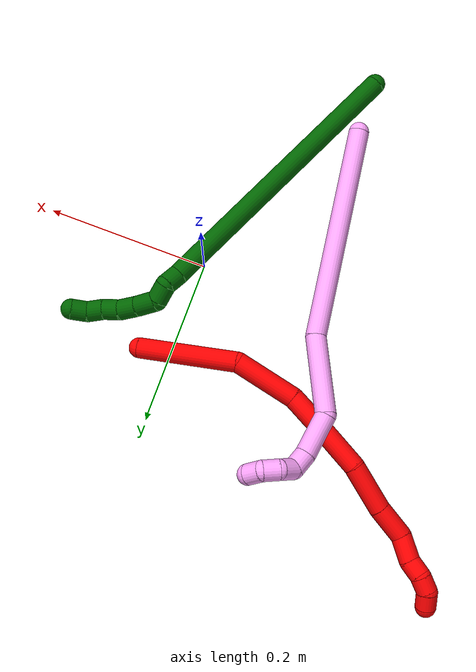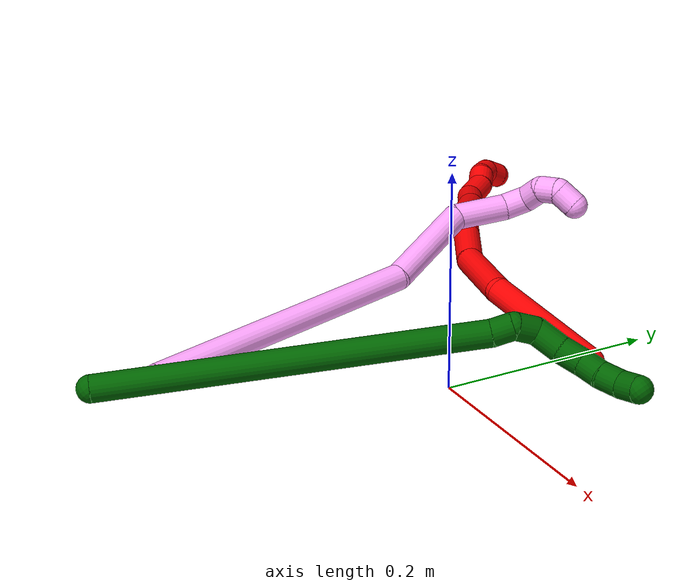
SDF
<sdf version="1.7">
 <world name="default">
  <model name="photoneo_s_sensor">
   <static>1</static>
   <pose>0 0 2 1.57079 1.57079 3.14159</pose>
   <link name="link">
    <inertial><mass>0.1</mass></inertial>
    <sensor name="sensor" type="depth">
     <update_rate>30</update_rate>
     <camera>
      <horizontal_fov>1.22</horizontal_fov>
      <image><width>1920</width><height>1200</height><format>B8G8R8</format></image>
      <clip><near>0.1</near><far>4</far></clip>
      <depth_camera><output>points</output></depth_camera>
     </camera>
     <plugin name="camera_plugin" filename="libgazebo_ros_depth_camera.so">
      <baseline>0.2</baseline>
      <alwaysOn>1</alwaysOn>
      <updateRate>0.0</updateRate>
      <cameraName>camera_ir</cameraName>
      <imageTopicName>/camera/color/image_raw</imageTopicName>
      <cameraInfoTopicName>/camera/color/camera_info</cameraInfoTopicName>
      <depthImageTopicName>/camera/depth/image_raw</depthImageTopicName>
      <depthImageCameraInfoTopicName>/camera/depth/camera_info</depthImageCameraInfoTopicName>
      <pointCloudTopicName>/camera/depth/points</pointCloudTopicName>
      <frameName>fr_optical</frameName>
      <pointCloudCutoff>0.1</pointCloudCutoff>
      <pointCloudCutoffMax>2.0</pointCloudCutoffMax>
      <distortionK1>0</distortionK1>
      <distortionK2>0</distortionK2>
      <distortionK3>0</distortionK3>
      <distortionT1>0</distortionT1>
      <distortionT2>0</distortionT2>
      <CxPrime>0</CxPrime>
      <Cx>0</Cx>
      <Cy>0</Cy>
      <focalLength>0</focalLength>
      <hackBaseline>0</hackBaseline>
     </plugin>
    </sensor>
   </link>
  </model>
  <model name="bin">
   <static>1</static>
   <link name="bottom">
    <collision name="collision-bottom">
     <pose>0 0 -0.01 0 -0 0</pose>
     <geometry><box><size>0.8 0.6 0.02</size></box></geometry>
     <surface>
      <friction><ode><mu>100</mu><mu2>100</mu2></ode></friction>
      <contact><collide_bitmask>65535</collide_bitmask></contact>
     </surface>
    </collision>
   </link>
   <link name="west_wall">
    <collision name="collision-west_wall">
     <pose>-0.41 0 0.1 0 -0 0</pose>
     <geometry><box><size>0.02 0.6 0.2</size></box></geometry>
     <surface>
      <friction><ode><mu>100</mu><mu2>100</mu2></ode></friction>
      <contact><collide_bitmask>65535</collide_bitmask></contact>
     </surface>
    </collision>
   </link>
   <link name="east_wall">
    <collision name="collision-east_wall">
     <pose>0.41 0 0.1 0 -0 0</pose>
     <geometry><box><size>0.02 0.6 0.2</size></box></geometry>
     <surface>
      <friction><ode><mu>100</mu><mu2>100</mu2></ode></friction>
      <contact><collide_bitmask>65535</collide_bitmask></contact>
     </surface>
    </collision>
   </link>
   <link name="south_wall">
    <collision name="collision-south_wall">
     <pose>0 -0.31 0.1 0 -0 0</pose>
     <geometry><box><size>0.8 0.02 0.2</size></box></geometry>
     <surface>
      <friction><ode><mu>100</mu><mu2>100</mu2></ode></friction>
      <contact><collide_bitmask>65535</collide_bitmask></contact>
     </surface>
    </collision>
   </link>
   <link name="north_wall">
    <collision name="collision-north_wall">
     <pose>0 0.31 0.1 0 -0 0</pose>
     <geometry><box><size>0.8 0.02 0.2</size></box></geometry>
     <surface>
      <friction><ode><mu>100</mu><mu2>100</mu2></ode></friction>
      <contact><collide_bitmask>65535</collide_bitmask></contact>
     </surface>
    </collision>
   </link>
  </model>
  <model name="2">
   <static>0</static>
   <link name="2">
    <collision name="collision-cylinder-e_1_1_4">
     <pose>-0.004161 -0.006115 0.061323 0.099397 -0.067417 -0.003355</pose>
     <geometry><cylinder><radius>0.0125</radius><length>0.123535</length></cylinder></geometry>
     <surface>
      <friction><ode><mu>1.16</mu><mu2>1.16</mu2><slip1>0</slip1><slip2>0</slip2></ode></friction>
      <contact><ode><kp>1e+06</kp><kd>1</kd><max_vel>0</max_vel><min_depth>0.001</min_depth></ode></contact>
     </surface>
    </collision>
    <visual name="visual-cylinder-e_1_1_4">
     <pose>-0.004161 -0.006115 0.061323 0.099397 -0.067417 -0.003355</pose>
     <geometry><cylinder><radius>0.0125</radius><length>0.123535</length></cylinder></geometry>
     <material><ambient>1 0 0 1</ambient></material>
    </visual>
    <collision name="collision-cylinder-e_2_4_5">
     <pose>-0.01463 0.001521 0.158613 -0.365203 -0.16237 0.030047</pose>
     <geometry><cylinder><radius>0.0125</radius><length>0.078039</length></cylinder></geometry>
     <surface>
      <friction><ode><mu>1.16</mu><mu2>1.16</mu2><slip1>0</slip1><slip2>0</slip2></ode></friction>
      <contact><ode><kp>1e+06</kp><kd>1</kd><max_vel>0</max_vel><min_depth>0.001</min_depth></ode></contact>
     </surface>
    </collision>
    <visual name="visual-cylinder-e_2_4_5">
     <pose>-0.01463 0.001521 0.158613 -0.365203 -0.16237 0.030047</pose>
     <geometry><cylinder><radius>0.0125</radius><length>0.078039</length></cylinder></geometry>
     <material><ambient>1 0 0 1</ambient></material>
    </visual>
    <collision name="collision-cylinder-e_3_5_6">
     <pose>-0.019731 0.029073 0.215886 -0.574736 0.047482 -0.014036</pose>
     <geometry><cylinder><radius>0.0125</radius><length>0.050827</length></cylinder></geometry>
     <surface>
      <friction><ode><mu>1.16</mu><mu2>1.16</mu2><slip1>0</slip1><slip2>0</slip2></ode></friction>
      <contact><ode><kp>1e+06</kp><kd>1</kd><max_vel>0</max_vel><min_depth>0.001</min_depth></ode></contact>
     </surface>
    </collision>
    <visual name="visual-cylinder-e_3_5_6">
     <pose>-0.019731 0.029073 0.215886 -0.574736 0.047482 -0.014036</pose>
     <geometry><cylinder><radius>0.0125</radius><length>0.050827</length></cylinder></geometry>
     <material><ambient>1 0 0 1</ambient></material>
    </visual>
    <collision name="collision-cylinder-e_4_6_7">
     <pose>-0.019772 0.059257 0.259628 -0.63079 -0.044858 0.014639</pose>
     <geometry><cylinder><radius>0.0125</radius><length>0.055618</length></cylinder></geometry>
     <surface>
      <friction><ode><mu>1.16</mu><mu2>1.16</mu2><slip1>0</slip1><slip2>0</slip2></ode></friction>
      <contact><ode><kp>1e+06</kp><kd>1</kd><max_vel>0</max_vel><min_depth>0.001</min_depth></ode></contact>
     </surface>
    </collision>
    <visual name="visual-cylinder-e_4_6_7">
     <pose>-0.019772 0.059257 0.259628 -0.63079 -0.044858 0.014639</pose>
     <geometry><cylinder><radius>0.0125</radius><length>0.055618</length></cylinder></geometry>
     <material><ambient>1 0 0 1</ambient></material>
    </visual>
    <collision name="collision-cylinder-e_5_7_8">
     <pose>-0.025123 0.097487 0.301257 -0.849891 -0.14019 0.063521</pose>
     <geometry><cylinder><radius>0.0125</radius><length>0.058735</length></cylinder></geometry>
     <surface>
      <friction><ode><mu>1.16</mu><mu2>1.16</mu2><slip1>0</slip1><slip2>0</slip2></ode></friction>
      <contact><ode><kp>1e+06</kp><kd>1</kd><max_vel>0</max_vel><min_depth>0.001</min_depth></ode></contact>
     </surface>
    </collision>
    <visual name="visual-cylinder-e_5_7_8">
     <pose>-0.025123 0.097487 0.301257 -0.849891 -0.14019 0.063521</pose>
     <geometry><cylinder><radius>0.0125</radius><length>0.058735</length></cylinder></geometry>
     <material><ambient>1 0 0 1</ambient></material>
    </visual>
    <collision name="collision-cylinder-e_6_8_9">
     <pose>-0.032716 0.132699 0.335809 -0.71623 -0.16976 0.063665</pose>
     <geometry><cylinder><radius>0.0125</radius><length>0.041316</length></cylinder></geometry>
     <surface>
      <friction><ode><mu>1.16</mu><mu2>1.16</mu2><slip1>0</slip1><slip2>0</slip2></ode></friction>
      <contact><ode><kp>1e+06</kp><kd>1</kd><max_vel>0</max_vel><min_depth>0.001</min_depth></ode></contact>
     </surface>
    </collision>
    <visual name="visual-cylinder-e_6_8_9">
     <pose>-0.032716 0.132699 0.335809 -0.71623 -0.16976 0.063665</pose>
     <geometry><cylinder><radius>0.0125</radius><length>0.041316</length></cylinder></geometry>
     <material><ambient>1 0 0 1</ambient></material>
    </visual>
    <collision name="collision-cylinder-e_7_9_10">
     <pose>-0.033309 0.158698 0.359778 -0.972424 0.187315 -0.099211</pose>
     <geometry><cylinder><radius>0.0125</radius><length>0.031117</length></cylinder></geometry>
     <surface>
      <friction><ode><mu>1.16</mu><mu2>1.16</mu2><slip1>0</slip1><slip2>0</slip2></ode></friction>
      <contact><ode><kp>1e+06</kp><kd>1</kd><max_vel>0</max_vel><min_depth>0.001</min_depth></ode></contact>
     </surface>
    </collision>
    <visual name="visual-cylinder-e_7_9_10">
     <pose>-0.033309 0.158698 0.359778 -0.972424 0.187315 -0.099211</pose>
     <geometry><cylinder><radius>0.0125</radius><length>0.031117</length></cylinder></geometry>
     <material><ambient>1 0 0 1</ambient></material>
    </visual>
    <collision name="collision-cylinder-e_8_10_11">
     <pose>-0.02835 0.177334 0.376495 -0.637687 0.201627 -0.06676</pose>
     <geometry><cylinder><radius>0.0125</radius><length>0.020594</length></cylinder></geometry>
     <surface>
      <friction><ode><mu>1.16</mu><mu2>1.16</mu2><slip1>0</slip1><slip2>0</slip2></ode></friction>
      <contact><ode><kp>1e+06</kp><kd>1</kd><max_vel>0</max_vel><min_depth>0.001</min_depth></ode></contact>
     </surface>
    </collision>
    <visual name="visual-cylinder-e_8_10_11">
     <pose>-0.02835 0.177334 0.376495 -0.637687 0.201627 -0.06676</pose>
     <geometry><cylinder><radius>0.0125</radius><length>0.020594</length></cylinder></geometry>
     <material><ambient>1 0 0 1</ambient></material>
    </visual>
    <collision name="collision-cylinder-e_9_11_12">
     <pose>-0.026741 0.191597 0.390392 -0.959165 -0.044941 0.023376</pose>
     <geometry><cylinder><radius>0.0125</radius><length>0.020191</length></cylinder></geometry>
     <surface>
      <friction><ode><mu>1.16</mu><mu2>1.16</mu2><slip1>0</slip1><slip2>0</slip2></ode></friction>
      <contact><ode><kp>1e+06</kp><kd>1</kd><max_vel>0</max_vel><min_depth>0.001</min_depth></ode></contact>
     </surface>
    </collision>
    <visual name="visual-cylinder-e_9_11_12">
     <pose>-0.026741 0.191597 0.390392 -0.959165 -0.044941 0.023376</pose>
     <geometry><cylinder><radius>0.0125</radius><length>0.020191</length></cylinder></geometry>
     <material><ambient>1 0 0 1</ambient></material>
    </visual>
    <collision name="collision-cylinder-e_10_12_2">
     <pose>-0.028937 0.209674 0.397081 -1.47961 -0.174923 0.159727</pose>
     <geometry><cylinder><radius>0.0125</radius><length>0.020027</length></cylinder></geometry>
     <surface>
      <friction><ode><mu>1.16</mu><mu2>1.16</mu2><slip1>0</slip1><slip2>0</slip2></ode></friction>
      <contact><ode><kp>1e+06</kp><kd>1</kd><max_vel>0</max_vel><min_depth>0.001</min_depth></ode></contact>
     </surface>
    </collision>
    <visual name="visual-cylinder-e_10_12_2">
     <pose>-0.028937 0.209674 0.397081 -1.47961 -0.174923 0.159727</pose>
     <geometry><cylinder><radius>0.0125</radius><length>0.020027</length></cylinder></geometry>
     <material><ambient>1 0 0 1</ambient></material>
    </visual>
    <collision name="collision-sphere-2">
     <pose>-0.03068 0.219494 0.397979 0 -0 0</pose>
     <geometry><sphere><radius>0.0125</radius></sphere></geometry>
     <surface>
      <friction><ode><mu>1.16</mu><mu2>1.16</mu2><slip1>0</slip1><slip2>0</slip2></ode></friction>
      <contact><ode><kp>1e+06</kp><kd>1</kd><max_vel>0</max_vel><min_depth>0.001</min_depth></ode></contact>
     </surface>
    </collision>
    <visual name="visual-sphere-2">
     <pose>-0.03068 0.219494 0.397979 0 -0 0</pose>
     <geometry><sphere><radius>0.0125</radius></sphere></geometry>
     <material><ambient>1 0 0 1</ambient></material>
    </visual>
    <collision name="collision-sphere-12">
     <pose>-0.027195 0.199854 0.396183 0 -0 0</pose>
     <geometry><sphere><radius>0.0125</radius></sphere></geometry>
     <surface>
      <friction><ode><mu>1.16</mu><mu2>1.16</mu2><slip1>0</slip1><slip2>0</slip2></ode></friction>
      <contact><ode><kp>1e+06</kp><kd>1</kd><max_vel>0</max_vel><min_depth>0.001</min_depth></ode></contact>
     </surface>
    </collision>
    <visual name="visual-sphere-12">
     <pose>-0.027195 0.199854 0.396183 0 -0 0</pose>
     <geometry><sphere><radius>0.0125</radius></sphere></geometry>
     <material><ambient>1 0 0 1</ambient></material>
    </visual>
    <collision name="collision-sphere-11">
     <pose>-0.026288 0.18334 0.384601 0 -0 0</pose>
     <geometry><sphere><radius>0.0125</radius></sphere></geometry>
     <surface>
      <friction><ode><mu>1.16</mu><mu2>1.16</mu2><slip1>0</slip1><slip2>0</slip2></ode></friction>
      <contact><ode><kp>1e+06</kp><kd>1</kd><max_vel>0</max_vel><min_depth>0.001</min_depth></ode></contact>
     </surface>
    </collision>
    <visual name="visual-sphere-11">
     <pose>-0.026288 0.18334 0.384601 0 -0 0</pose>
     <geometry><sphere><radius>0.0125</radius></sphere></geometry>
     <material><ambient>1 0 0 1</ambient></material>
    </visual>
    <collision name="collision-sphere-10">
     <pose>-0.030412 0.171328 0.368389 0 -0 0</pose>
     <geometry><sphere><radius>0.0125</radius></sphere></geometry>
     <surface>
      <friction><ode><mu>1.16</mu><mu2>1.16</mu2><slip1>0</slip1><slip2>0</slip2></ode></friction>
      <contact><ode><kp>1e+06</kp><kd>1</kd><max_vel>0</max_vel><min_depth>0.001</min_depth></ode></contact>
     </surface>
    </collision>
    <visual name="visual-sphere-10">
     <pose>-0.030412 0.171328 0.368389 0 -0 0</pose>
     <geometry><sphere><radius>0.0125</radius></sphere></geometry>
     <material><ambient>1 0 0 1</ambient></material>
    </visual>
    <collision name="collision-sphere-9">
     <pose>-0.036207 0.146067 0.351167 0 -0 0</pose>
     <geometry><sphere><radius>0.0125</radius></sphere></geometry>
     <surface>
      <friction><ode><mu>1.16</mu><mu2>1.16</mu2><slip1>0</slip1><slip2>0</slip2></ode></friction>
      <contact><ode><kp>1e+06</kp><kd>1</kd><max_vel>0</max_vel><min_depth>0.001</min_depth></ode></contact>
     </surface>
    </collision>
    <visual name="visual-sphere-9">
     <pose>-0.036207 0.146067 0.351167 0 -0 0</pose>
     <geometry><sphere><radius>0.0125</radius></sphere></geometry>
     <material><ambient>1 0 0 1</ambient></material>
    </visual>
    <collision name="collision-sphere-4">
     <pose>-0.008322 -0.012231 0.122646 0 -0 0</pose>
     <geometry><sphere><radius>0.0125</radius></sphere></geometry>
     <surface>
      <friction><ode><mu>1.16</mu><mu2>1.16</mu2><slip1>0</slip1><slip2>0</slip2></ode></friction>
      <contact><ode><kp>1e+06</kp><kd>1</kd><max_vel>0</max_vel><min_depth>0.001</min_depth></ode></contact>
     </surface>
    </collision>
    <visual name="visual-sphere-4">
     <pose>-0.008322 -0.012231 0.122646 0 -0 0</pose>
     <geometry><sphere><radius>0.0125</radius></sphere></geometry>
     <material><ambient>1 0 0 1</ambient></material>
    </visual>
    <collision name="collision-sphere-1">
     <geometry><sphere><radius>0.0125</radius></sphere></geometry>
     <surface>
      <friction><ode><mu>1.16</mu><mu2>1.16</mu2><slip1>0</slip1><slip2>0</slip2></ode></friction>
      <contact><ode><kp>1e+06</kp><kd>1</kd><max_vel>0</max_vel><min_depth>0.001</min_depth></ode></contact>
     </surface>
    </collision>
    <visual name="visual-sphere-1">
     <geometry><sphere><radius>0.0125</radius></sphere></geometry>
     <material><ambient>1 0 0 1</ambient></material>
    </visual>
    <collision name="collision-sphere-8">
     <pose>-0.029226 0.119331 0.320451 0 -0 0</pose>
     <geometry><sphere><radius>0.0125</radius></sphere></geometry>
     <surface>
      <friction><ode><mu>1.16</mu><mu2>1.16</mu2><slip1>0</slip1><slip2>0</slip2></ode></friction>
      <contact><ode><kp>1e+06</kp><kd>1</kd><max_vel>0</max_vel><min_depth>0.001</min_depth></ode></contact>
     </surface>
    </collision>
    <visual name="visual-sphere-8">
     <pose>-0.029226 0.119331 0.320451 0 -0 0</pose>
     <geometry><sphere><radius>0.0125</radius></sphere></geometry>
     <material><ambient>1 0 0 1</ambient></material>
    </visual>
    <collision name="collision-sphere-5">
     <pose>-0.020938 0.015273 0.19458 0 -0 0</pose>
     <geometry><sphere><radius>0.0125</radius></sphere></geometry>
     <surface>
      <friction><ode><mu>1.16</mu><mu2>1.16</mu2><slip1>0</slip1><slip2>0</slip2></ode></friction>
      <contact><ode><kp>1e+06</kp><kd>1</kd><max_vel>0</max_vel><min_depth>0.001</min_depth></ode></contact>
     </surface>
    </collision>
    <visual name="visual-sphere-5">
     <pose>-0.020938 0.015273 0.19458 0 -0 0</pose>
     <geometry><sphere><radius>0.0125</radius></sphere></geometry>
     <material><ambient>1 0 0 1</ambient></material>
    </visual>
    <collision name="collision-sphere-6">
     <pose>-0.018525 0.042872 0.237193 0 -0 0</pose>
     <geometry><sphere><radius>0.0125</radius></sphere></geometry>
     <surface>
      <friction><ode><mu>1.16</mu><mu2>1.16</mu2><slip1>0</slip1><slip2>0</slip2></ode></friction>
      <contact><ode><kp>1e+06</kp><kd>1</kd><max_vel>0</max_vel><min_depth>0.001</min_depth></ode></contact>
     </surface>
    </collision>
    <visual name="visual-sphere-6">
     <pose>-0.018525 0.042872 0.237193 0 -0 0</pose>
     <geometry><sphere><radius>0.0125</radius></sphere></geometry>
     <material><ambient>1 0 0 1</ambient></material>
    </visual>
    <collision name="collision-sphere-7">
     <pose>-0.021019 0.075642 0.282063 0 -0 0</pose>
     <geometry><sphere><radius>0.0125</radius></sphere></geometry>
     <surface>
      <friction><ode><mu>1.16</mu><mu2>1.16</mu2><slip1>0</slip1><slip2>0</slip2></ode></friction>
      <contact><ode><kp>1e+06</kp><kd>1</kd><max_vel>0</max_vel><min_depth>0.001</min_depth></ode></contact>
     </surface>
    </collision>
    <visual name="visual-sphere-7">
     <pose>-0.021019 0.075642 0.282063 0 -0 0</pose>
     <geometry><sphere><radius>0.0125</radius></sphere></geometry>
     <material><ambient>1 0 0 1</ambient></material>
    </visual>
    <inertial>
     <pose>-0.018651 0.064006 0.223438 0 -0 0</pose>
     <mass>0.5</mass>
     <inertia>
      <ixx>0.000267</ixx>
      <ixy>0</ixy>
      <ixz>0</ixz>
      <iyy>0.000267</iyy>
      <iyz>0</iyz>
      <izz>1.1e-05</izz>
     </inertia>
    </inertial>
   </link>
   <pose>0.037518 0.122286 0.012545 -0.918209 -1.1459 1.03404</pose>
  </model>
  <model name="4">
   <static>0</static>
   <link name="4">
    <collision name="collision-cylinder-e_1_1_4">
     <pose>-0.008999 0.031477 0.128534 -0.240164 -0.067899 0.008196</pose>
     <geometry><cylinder><radius>0.0125</radius><length>0.265275</length></cylinder></geometry>
     <surface>
      <friction><ode><mu>1.16</mu><mu2>1.16</mu2><slip1>0</slip1><slip2>0</slip2></ode></friction>
      <contact><ode><kp>1e+06</kp><kd>1</kd><max_vel>0</max_vel><min_depth>0.001</min_depth></ode></contact>
     </surface>
    </collision>
    <visual name="visual-cylinder-e_1_1_4">
     <pose>-0.008999 0.031477 0.128534 -0.240164 -0.067899 0.008196</pose>
     <geometry><cylinder><radius>0.0125</radius><length>0.265275</length></cylinder></geometry>
     <material><ambient>1 0.65098 0.996078 1</ambient></material>
    </visual>
    <collision name="collision-cylinder-e_2_4_5">
     <pose>-0.017752 0.05748 0.306285 0.110766 0.004973 0.000276</pose>
     <geometry><cylinder><radius>0.0125</radius><length>0.099043</length></cylinder></geometry>
     <surface>
      <friction><ode><mu>1.16</mu><mu2>1.16</mu2><slip1>0</slip1><slip2>0</slip2></ode></friction>
      <contact><ode><kp>1e+06</kp><kd>1</kd><max_vel>0</max_vel><min_depth>0.001</min_depth></ode></contact>
     </surface>
    </collision>
    <visual name="visual-cylinder-e_2_4_5">
     <pose>-0.017752 0.05748 0.306285 0.110766 0.004973 0.000276</pose>
     <geometry><cylinder><radius>0.0125</radius><length>0.099043</length></cylinder></geometry>
     <material><ambient>1 0.65098 0.996078 1</ambient></material>
    </visual>
    <collision name="collision-cylinder-e_3_5_6">
     <pose>-0.017406 0.064275 0.377862 -0.501853 0.003916 -0.001004</pose>
     <geometry><cylinder><radius>0.0125</radius><length>0.05101</length></cylinder></geometry>
     <surface>
      <friction><ode><mu>1.16</mu><mu2>1.16</mu2><slip1>0</slip1><slip2>0</slip2></ode></friction>
      <contact><ode><kp>1e+06</kp><kd>1</kd><max_vel>0</max_vel><min_depth>0.001</min_depth></ode></contact>
     </surface>
    </collision>
    <visual name="visual-cylinder-e_3_5_6">
     <pose>-0.017406 0.064275 0.377862 -0.501853 0.003916 -0.001004</pose>
     <geometry><cylinder><radius>0.0125</radius><length>0.05101</length></cylinder></geometry>
     <material><ambient>1 0.65098 0.996078 1</ambient></material>
    </visual>
    <collision name="collision-cylinder-e_4_6_7">
     <pose>-0.013481 0.082584 0.409267 -0.58882 0.33816 -0.103434</pose>
     <geometry><cylinder><radius>0.0125</radius><length>0.023059</length></cylinder></geometry>
     <surface>
      <friction><ode><mu>1.16</mu><mu2>1.16</mu2><slip1>0</slip1><slip2>0</slip2></ode></friction>
      <contact><ode><kp>1e+06</kp><kd>1</kd><max_vel>0</max_vel><min_depth>0.001</min_depth></ode></contact>
     </surface>
    </collision>
    <visual name="visual-cylinder-e_4_6_7">
     <pose>-0.013481 0.082584 0.409267 -0.58882 0.33816 -0.103434</pose>
     <geometry><cylinder><radius>0.0125</radius><length>0.023059</length></cylinder></geometry>
     <material><ambient>1 0.65098 0.996078 1</ambient></material>
    </visual>
    <collision name="collision-cylinder-e_5_7_8">
     <pose>-0.000662 0.093975 0.420619 -1.16364 0.995977 -0.686903</pose>
     <geometry><cylinder><radius>0.0125</radius><length>0.021432</length></cylinder></geometry>
     <surface>
      <friction><ode><mu>1.16</mu><mu2>1.16</mu2><slip1>0</slip1><slip2>0</slip2></ode></friction>
      <contact><ode><kp>1e+06</kp><kd>1</kd><max_vel>0</max_vel><min_depth>0.001</min_depth></ode></contact>
     </surface>
    </collision>
    <visual name="visual-cylinder-e_5_7_8">
     <pose>-0.000662 0.093975 0.420619 -1.16364 0.995977 -0.686903</pose>
     <geometry><cylinder><radius>0.0125</radius><length>0.021432</length></cylinder></geometry>
     <material><ambient>1 0.65098 0.996078 1</ambient></material>
    </visual>
    <collision name="collision-cylinder-e_6_8_9">
     <pose>0.012633 0.108358 0.424085 -1.44322 0.441201 -0.389638</pose>
     <geometry><cylinder><radius>0.0125</radius><length>0.020144</length></cylinder></geometry>
     <surface>
      <friction><ode><mu>1.16</mu><mu2>1.16</mu2><slip1>0</slip1><slip2>0</slip2></ode></friction>
      <contact><ode><kp>1e+06</kp><kd>1</kd><max_vel>0</max_vel><min_depth>0.001</min_depth></ode></contact>
     </surface>
    </collision>
    <visual name="visual-cylinder-e_6_8_9">
     <pose>0.012633 0.108358 0.424085 -1.44322 0.441201 -0.389638</pose>
     <geometry><cylinder><radius>0.0125</radius><length>0.020144</length></cylinder></geometry>
     <material><ambient>1 0.65098 0.996078 1</ambient></material>
    </visual>
    <collision name="collision-cylinder-e_7_9_2">
     <pose>0.013927 0.126929 0.425849 -1.50743 -0.304865 0.286396</pose>
     <geometry><cylinder><radius>0.0125</radius><length>0.020038</length></cylinder></geometry>
     <surface>
      <friction><ode><mu>1.16</mu><mu2>1.16</mu2><slip1>0</slip1><slip2>0</slip2></ode></friction>
      <contact><ode><kp>1e+06</kp><kd>1</kd><max_vel>0</max_vel><min_depth>0.001</min_depth></ode></contact>
     </surface>
    </collision>
    <visual name="visual-cylinder-e_7_9_2">
     <pose>0.013927 0.126929 0.425849 -1.50743 -0.304865 0.286396</pose>
     <geometry><cylinder><radius>0.0125</radius><length>0.020038</length></cylinder></geometry>
     <material><ambient>1 0.65098 0.996078 1</ambient></material>
    </visual>
    <collision name="collision-sphere-2">
     <pose>0.010919 0.136467 0.426454 0 -0 0</pose>
     <geometry><sphere><radius>0.0125</radius></sphere></geometry>
     <surface>
      <friction><ode><mu>1.16</mu><mu2>1.16</mu2><slip1>0</slip1><slip2>0</slip2></ode></friction>
      <contact><ode><kp>1e+06</kp><kd>1</kd><max_vel>0</max_vel><min_depth>0.001</min_depth></ode></contact>
     </surface>
    </collision>
    <visual name="visual-sphere-2">
     <pose>0.010919 0.136467 0.426454 0 -0 0</pose>
     <geometry><sphere><radius>0.0125</radius></sphere></geometry>
     <material><ambient>1 0.65098 0.996078 1</ambient></material>
    </visual>
    <collision name="collision-sphere-9">
     <pose>0.016934 0.117391 0.425244 0 -0 0</pose>
     <geometry><sphere><radius>0.0125</radius></sphere></geometry>
     <surface>
      <friction><ode><mu>1.16</mu><mu2>1.16</mu2><slip1>0</slip1><slip2>0</slip2></ode></friction>
      <contact><ode><kp>1e+06</kp><kd>1</kd><max_vel>0</max_vel><min_depth>0.001</min_depth></ode></contact>
     </surface>
    </collision>
    <visual name="visual-sphere-9">
     <pose>0.016934 0.117391 0.425244 0 -0 0</pose>
     <geometry><sphere><radius>0.0125</radius></sphere></geometry>
     <material><ambient>1 0.65098 0.996078 1</ambient></material>
    </visual>
    <collision name="collision-sphere-4">
     <pose>-0.017998 0.062954 0.257068 0 -0 0</pose>
     <geometry><sphere><radius>0.0125</radius></sphere></geometry>
     <surface>
      <friction><ode><mu>1.16</mu><mu2>1.16</mu2><slip1>0</slip1><slip2>0</slip2></ode></friction>
      <contact><ode><kp>1e+06</kp><kd>1</kd><max_vel>0</max_vel><min_depth>0.001</min_depth></ode></contact>
     </surface>
    </collision>
    <visual name="visual-sphere-4">
     <pose>-0.017998 0.062954 0.257068 0 -0 0</pose>
     <geometry><sphere><radius>0.0125</radius></sphere></geometry>
     <material><ambient>1 0.65098 0.996078 1</ambient></material>
    </visual>
    <collision name="collision-sphere-1">
     <geometry><sphere><radius>0.0125</radius></sphere></geometry>
     <surface>
      <friction><ode><mu>1.16</mu><mu2>1.16</mu2><slip1>0</slip1><slip2>0</slip2></ode></friction>
      <contact><ode><kp>1e+06</kp><kd>1</kd><max_vel>0</max_vel><min_depth>0.001</min_depth></ode></contact>
     </surface>
    </collision>
    <visual name="visual-sphere-1">
     <geometry><sphere><radius>0.0125</radius></sphere></geometry>
     <material><ambient>1 0.65098 0.996078 1</ambient></material>
    </visual>
    <collision name="collision-sphere-8">
     <pose>0.008332 0.099325 0.422926 0 -0 0</pose>
     <geometry><sphere><radius>0.0125</radius></sphere></geometry>
     <surface>
      <friction><ode><mu>1.16</mu><mu2>1.16</mu2><slip1>0</slip1><slip2>0</slip2></ode></friction>
      <contact><ode><kp>1e+06</kp><kd>1</kd><max_vel>0</max_vel><min_depth>0.001</min_depth></ode></contact>
     </surface>
    </collision>
    <visual name="visual-sphere-8">
     <pose>0.008332 0.099325 0.422926 0 -0 0</pose>
     <geometry><sphere><radius>0.0125</radius></sphere></geometry>
     <material><ambient>1 0.65098 0.996078 1</ambient></material>
    </visual>
    <collision name="collision-sphere-5">
     <pose>-0.017505 0.052006 0.355502 0 -0 0</pose>
     <geometry><sphere><radius>0.0125</radius></sphere></geometry>
     <surface>
      <friction><ode><mu>1.16</mu><mu2>1.16</mu2><slip1>0</slip1><slip2>0</slip2></ode></friction>
      <contact><ode><kp>1e+06</kp><kd>1</kd><max_vel>0</max_vel><min_depth>0.001</min_depth></ode></contact>
     </surface>
    </collision>
    <visual name="visual-sphere-5">
     <pose>-0.017505 0.052006 0.355502 0 -0 0</pose>
     <geometry><sphere><radius>0.0125</radius></sphere></geometry>
     <material><ambient>1 0.65098 0.996078 1</ambient></material>
    </visual>
    <collision name="collision-sphere-6">
     <pose>-0.017306 0.076544 0.400222 0 -0 0</pose>
     <geometry><sphere><radius>0.0125</radius></sphere></geometry>
     <surface>
      <friction><ode><mu>1.16</mu><mu2>1.16</mu2><slip1>0</slip1><slip2>0</slip2></ode></friction>
      <contact><ode><kp>1e+06</kp><kd>1</kd><max_vel>0</max_vel><min_depth>0.001</min_depth></ode></contact>
     </surface>
    </collision>
    <visual name="visual-sphere-6">
     <pose>-0.017306 0.076544 0.400222 0 -0 0</pose>
     <geometry><sphere><radius>0.0125</radius></sphere></geometry>
     <material><ambient>1 0.65098 0.996078 1</ambient></material>
    </visual>
    <collision name="collision-sphere-7">
     <pose>-0.009656 0.088625 0.418312 0 -0 0</pose>
     <geometry><sphere><radius>0.0125</radius></sphere></geometry>
     <surface>
      <friction><ode><mu>1.16</mu><mu2>1.16</mu2><slip1>0</slip1><slip2>0</slip2></ode></friction>
      <contact><ode><kp>1e+06</kp><kd>1</kd><max_vel>0</max_vel><min_depth>0.001</min_depth></ode></contact>
     </surface>
    </collision>
    <visual name="visual-sphere-7">
     <pose>-0.009656 0.088625 0.418312 0 -0 0</pose>
     <geometry><sphere><radius>0.0125</radius></sphere></geometry>
     <material><ambient>1 0.65098 0.996078 1</ambient></material>
    </visual>
    <inertial>
     <pose>-0.009649 0.051932 0.238469 0 -0 0</pose>
     <mass>0.5</mass>
     <inertia>
      <ixx>0.001678</ixx>
      <ixy>0</ixy>
      <ixz>0</ixz>
      <iyy>0.001643</iyy>
      <iyz>0</iyz>
      <izz>-0.000236</izz>
     </inertia>
    </inertial>
   </link>
   <pose>-0.119778 -0.223708 0.012954 -0.946366 -1.14843 -0.239942</pose>
  </model>
  <model name="6">
   <static>0</static>
   <link name="6">
    <collision name="collision-cylinder-e_1_1_4">
     <pose>0.073495 0.13621 -0.078246 -2.09222 0.437615 -0.733598</pose>
     <geometry><cylinder><radius>0.0125</radius><length>0.346855</length></cylinder></geometry>
     <surface>
      <friction><ode><mu>1.16</mu><mu2>1.16</mu2><slip1>0</slip1><slip2>0</slip2></ode></friction>
      <contact><ode><kp>1e+06</kp><kd>1</kd><max_vel>0</max_vel><min_depth>0.001</min_depth></ode></contact>
     </surface>
    </collision>
    <visual name="visual-cylinder-e_1_1_4">
     <pose>0.073495 0.13621 -0.078246 -2.09222 0.437615 -0.733598</pose>
     <geometry><cylinder><radius>0.0125</radius><length>0.346855</length></cylinder></geometry>
     <material><ambient>0 0.392157 0.003922 1</ambient></material>
    </visual>
    <collision name="collision-cylinder-e_2_4_5">
     <pose>0.152928 0.280084 -0.159541 -1.94951 0.623869 -0.887497</pose>
     <geometry><cylinder><radius>0.0125</radius><length>0.020328</length></cylinder></geometry>
     <surface>
      <friction><ode><mu>1.16</mu><mu2>1.16</mu2><slip1>0</slip1><slip2>0</slip2></ode></friction>
      <contact><ode><kp>1e+06</kp><kd>1</kd><max_vel>0</max_vel><min_depth>0.001</min_depth></ode></contact>
     </surface>
    </collision>
    <visual name="visual-cylinder-e_2_4_5">
     <pose>0.152928 0.280084 -0.159541 -1.94951 0.623869 -0.887497</pose>
     <geometry><cylinder><radius>0.0125</radius><length>0.020328</length></cylinder></geometry>
     <material><ambient>0 0.392157 0.003922 1</ambient></material>
    </visual>
    <collision name="collision-cylinder-e_3_5_6">
     <pose>0.158239 0.29635 -0.169387 -2.23945 -0.057009 0.117593</pose>
     <geometry><cylinder><radius>0.0125</radius><length>0.021958</length></cylinder></geometry>
     <surface>
      <friction><ode><mu>1.16</mu><mu2>1.16</mu2><slip1>0</slip1><slip2>0</slip2></ode></friction>
      <contact><ode><kp>1e+06</kp><kd>1</kd><max_vel>0</max_vel><min_depth>0.001</min_depth></ode></contact>
     </surface>
    </collision>
    <visual name="visual-cylinder-e_3_5_6">
     <pose>0.158239 0.29635 -0.169387 -2.23945 -0.057009 0.117593</pose>
     <geometry><cylinder><radius>0.0125</radius><length>0.021958</length></cylinder></geometry>
     <material><ambient>0 0.392157 0.003922 1</ambient></material>
    </visual>
    <collision name="collision-cylinder-e_4_6_7">
     <pose>0.161014 0.307522 -0.189162 -2.94599 0.251515 -1.82162</pose>
     <geometry><cylinder><radius>0.0125</radius><length>0.027325</length></cylinder></geometry>
     <surface>
      <friction><ode><mu>1.16</mu><mu2>1.16</mu2><slip1>0</slip1><slip2>0</slip2></ode></friction>
      <contact><ode><kp>1e+06</kp><kd>1</kd><max_vel>0</max_vel><min_depth>0.001</min_depth></ode></contact>
     </surface>
    </collision>
    <visual name="visual-cylinder-e_4_6_7">
     <pose>0.161014 0.307522 -0.189162 -2.94599 0.251515 -1.82162</pose>
     <geometry><cylinder><radius>0.0125</radius><length>0.027325</length></cylinder></geometry>
     <material><ambient>0 0.392157 0.003922 1</ambient></material>
    </visual>
    <collision name="collision-cylinder-e_5_7_8">
     <pose>0.168924 0.312295 -0.212439 -2.93105 0.404654 -2.1903</pose>
     <geometry><cylinder><radius>0.0125</radius><length>0.022908</length></cylinder></geometry>
     <surface>
      <friction><ode><mu>1.16</mu><mu2>1.16</mu2><slip1>0</slip1><slip2>0</slip2></ode></friction>
      <contact><ode><kp>1e+06</kp><kd>1</kd><max_vel>0</max_vel><min_depth>0.001</min_depth></ode></contact>
     </surface>
    </collision>
    <visual name="visual-cylinder-e_5_7_8">
     <pose>0.168924 0.312295 -0.212439 -2.93105 0.404654 -2.1903</pose>
     <geometry><cylinder><radius>0.0125</radius><length>0.022908</length></cylinder></geometry>
     <material><ambient>0 0.392157 0.003922 1</ambient></material>
    </visual>
    <collision name="collision-cylinder-e_6_8_9">
     <pose>0.178668 0.314414 -0.23133 3.13216 0.547058 3.10798</pose>
     <geometry><cylinder><radius>0.0125</radius><length>0.020128</length></cylinder></geometry>
     <surface>
      <friction><ode><mu>1.16</mu><mu2>1.16</mu2><slip1>0</slip1><slip2>0</slip2></ode></friction>
      <contact><ode><kp>1e+06</kp><kd>1</kd><max_vel>0</max_vel><min_depth>0.001</min_depth></ode></contact>
     </surface>
    </collision>
    <visual name="visual-cylinder-e_6_8_9">
     <pose>0.178668 0.314414 -0.23133 3.13216 0.547058 3.10798</pose>
     <geometry><cylinder><radius>0.0125</radius><length>0.020128</length></cylinder></geometry>
     <material><ambient>0 0.392157 0.003922 1</ambient></material>
    </visual>
    <collision name="collision-cylinder-e_7_9_10">
     <pose>0.189238 0.316218 -0.248344 -2.92137 0.553838 -2.39965</pose>
     <geometry><cylinder><radius>0.0125</radius><length>0.020288</length></cylinder></geometry>
     <surface>
      <friction><ode><mu>1.16</mu><mu2>1.16</mu2><slip1>0</slip1><slip2>0</slip2></ode></friction>
      <contact><ode><kp>1e+06</kp><kd>1</kd><max_vel>0</max_vel><min_depth>0.001</min_depth></ode></contact>
     </surface>
    </collision>
    <visual name="visual-cylinder-e_7_9_10">
     <pose>0.189238 0.316218 -0.248344 -2.92137 0.553838 -2.39965</pose>
     <geometry><cylinder><radius>0.0125</radius><length>0.020288</length></cylinder></geometry>
     <material><ambient>0 0.392157 0.003922 1</ambient></material>
    </visual>
    <collision name="collision-cylinder-e_8_10_2">
     <pose>0.202598 0.317949 -0.262904 3.11668 0.917427 3.09116</pose>
     <geometry><cylinder><radius>0.0125</radius><length>0.020211</length></cylinder></geometry>
     <surface>
      <friction><ode><mu>1.16</mu><mu2>1.16</mu2><slip1>0</slip1><slip2>0</slip2></ode></friction>
      <contact><ode><kp>1e+06</kp><kd>1</kd><max_vel>0</max_vel><min_depth>0.001</min_depth></ode></contact>
     </surface>
    </collision>
    <visual name="visual-cylinder-e_8_10_2">
     <pose>0.202598 0.317949 -0.262904 3.11668 0.917427 3.09116</pose>
     <geometry><cylinder><radius>0.0125</radius><length>0.020211</length></cylinder></geometry>
     <material><ambient>0 0.392157 0.003922 1</ambient></material>
    </visual>
    <collision name="collision-sphere-2">
     <pose>0.210622 0.317796 -0.269045 0 -0 0</pose>
     <geometry><sphere><radius>0.0125</radius></sphere></geometry>
     <surface>
      <friction><ode><mu>1.16</mu><mu2>1.16</mu2><slip1>0</slip1><slip2>0</slip2></ode></friction>
      <contact><ode><kp>1e+06</kp><kd>1</kd><max_vel>0</max_vel><min_depth>0.001</min_depth></ode></contact>
     </surface>
    </collision>
    <visual name="visual-sphere-2">
     <pose>0.210622 0.317796 -0.269045 0 -0 0</pose>
     <geometry><sphere><radius>0.0125</radius></sphere></geometry>
     <material><ambient>0 0.392157 0.003922 1</ambient></material>
    </visual>
    <collision name="collision-sphere-10">
     <pose>0.194574 0.318102 -0.256763 0 -0 0</pose>
     <geometry><sphere><radius>0.0125</radius></sphere></geometry>
     <surface>
      <friction><ode><mu>1.16</mu><mu2>1.16</mu2><slip1>0</slip1><slip2>0</slip2></ode></friction>
      <contact><ode><kp>1e+06</kp><kd>1</kd><max_vel>0</max_vel><min_depth>0.001</min_depth></ode></contact>
     </surface>
    </collision>
    <visual name="visual-sphere-10">
     <pose>0.194574 0.318102 -0.256763 0 -0 0</pose>
     <geometry><sphere><radius>0.0125</radius></sphere></geometry>
     <material><ambient>0 0.392157 0.003922 1</ambient></material>
    </visual>
    <collision name="collision-sphere-9">
     <pose>0.183903 0.314333 -0.239925 0 -0 0</pose>
     <geometry><sphere><radius>0.0125</radius></sphere></geometry>
     <surface>
      <friction><ode><mu>1.16</mu><mu2>1.16</mu2><slip1>0</slip1><slip2>0</slip2></ode></friction>
      <contact><ode><kp>1e+06</kp><kd>1</kd><max_vel>0</max_vel><min_depth>0.001</min_depth></ode></contact>
     </surface>
    </collision>
    <visual name="visual-sphere-9">
     <pose>0.183903 0.314333 -0.239925 0 -0 0</pose>
     <geometry><sphere><radius>0.0125</radius></sphere></geometry>
     <material><ambient>0 0.392157 0.003922 1</ambient></material>
    </visual>
    <collision name="collision-sphere-4">
     <pose>0.14699 0.27242 -0.156491 0 -0 0</pose>
     <geometry><sphere><radius>0.0125</radius></sphere></geometry>
     <surface>
      <friction><ode><mu>1.16</mu><mu2>1.16</mu2><slip1>0</slip1><slip2>0</slip2></ode></friction>
      <contact><ode><kp>1e+06</kp><kd>1</kd><max_vel>0</max_vel><min_depth>0.001</min_depth></ode></contact>
     </surface>
    </collision>
    <visual name="visual-sphere-4">
     <pose>0.14699 0.27242 -0.156491 0 -0 0</pose>
     <geometry><sphere><radius>0.0125</radius></sphere></geometry>
     <material><ambient>0 0.392157 0.003922 1</ambient></material>
    </visual>
    <collision name="collision-sphere-1">
     <geometry><sphere><radius>0.0125</radius></sphere></geometry>
     <surface>
      <friction><ode><mu>1.16</mu><mu2>1.16</mu2><slip1>0</slip1><slip2>0</slip2></ode></friction>
      <contact><ode><kp>1e+06</kp><kd>1</kd><max_vel>0</max_vel><min_depth>0.001</min_depth></ode></contact>
     </surface>
    </collision>
    <visual name="visual-sphere-1">
     <geometry><sphere><radius>0.0125</radius></sphere></geometry>
     <material><ambient>0 0.392157 0.003922 1</ambient></material>
    </visual>
    <collision name="collision-sphere-8">
     <pose>0.173433 0.314495 -0.222735 0 -0 0</pose>
     <geometry><sphere><radius>0.0125</radius></sphere></geometry>
     <surface>
      <friction><ode><mu>1.16</mu><mu2>1.16</mu2><slip1>0</slip1><slip2>0</slip2></ode></friction>
      <contact><ode><kp>1e+06</kp><kd>1</kd><max_vel>0</max_vel><min_depth>0.001</min_depth></ode></contact>
     </surface>
    </collision>
    <visual name="visual-sphere-8">
     <pose>0.173433 0.314495 -0.222735 0 -0 0</pose>
     <geometry><sphere><radius>0.0125</radius></sphere></geometry>
     <material><ambient>0 0.392157 0.003922 1</ambient></material>
    </visual>
    <collision name="collision-sphere-5">
     <pose>0.158865 0.287749 -0.162591 0 -0 0</pose>
     <geometry><sphere><radius>0.0125</radius></sphere></geometry>
     <surface>
      <friction><ode><mu>1.16</mu><mu2>1.16</mu2><slip1>0</slip1><slip2>0</slip2></ode></friction>
      <contact><ode><kp>1e+06</kp><kd>1</kd><max_vel>0</max_vel><min_depth>0.001</min_depth></ode></contact>
     </surface>
    </collision>
    <visual name="visual-sphere-5">
     <pose>0.158865 0.287749 -0.162591 0 -0 0</pose>
     <geometry><sphere><radius>0.0125</radius></sphere></geometry>
     <material><ambient>0 0.392157 0.003922 1</ambient></material>
    </visual>
    <collision name="collision-sphere-6">
     <pose>0.157614 0.304951 -0.176182 0 -0 0</pose>
     <geometry><sphere><radius>0.0125</radius></sphere></geometry>
     <surface>
      <friction><ode><mu>1.16</mu><mu2>1.16</mu2><slip1>0</slip1><slip2>0</slip2></ode></friction>
      <contact><ode><kp>1e+06</kp><kd>1</kd><max_vel>0</max_vel><min_depth>0.001</min_depth></ode></contact>
     </surface>
    </collision>
    <visual name="visual-sphere-6">
     <pose>0.157614 0.304951 -0.176182 0 -0 0</pose>
     <geometry><sphere><radius>0.0125</radius></sphere></geometry>
     <material><ambient>0 0.392157 0.003922 1</ambient></material>
    </visual>
    <collision name="collision-sphere-7">
     <pose>0.164414 0.310094 -0.202143 0 -0 0</pose>
     <geometry><sphere><radius>0.0125</radius></sphere></geometry>
     <surface>
      <friction><ode><mu>1.16</mu><mu2>1.16</mu2><slip1>0</slip1><slip2>0</slip2></ode></friction>
      <contact><ode><kp>1e+06</kp><kd>1</kd><max_vel>0</max_vel><min_depth>0.001</min_depth></ode></contact>
     </surface>
    </collision>
    <visual name="visual-sphere-7">
     <pose>0.164414 0.310094 -0.202143 0 -0 0</pose>
     <geometry><sphere><radius>0.0125</radius></sphere></geometry>
     <material><ambient>0 0.392157 0.003922 1</ambient></material>
    </visual>
    <inertial>
     <pose>0.10375 0.188346 -0.118292 0 -0 0</pose>
     <mass>0.5</mass>
     <inertia>
      <ixx>0.00024</ixx>
      <ixy>0</ixy>
      <ixz>0</ixz>
      <iyy>-0.002525</iyy>
      <iyz>0</iyz>
      <izz>-0.004251</izz>
     </inertia>
    </inertial>
   </link>
   <pose>-0.11766 -0.286902 0.018094 0.22127 -0.77796 0.100405</pose>
  </model>
 </world>
</sdf>
